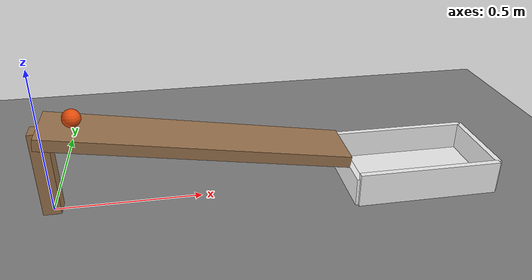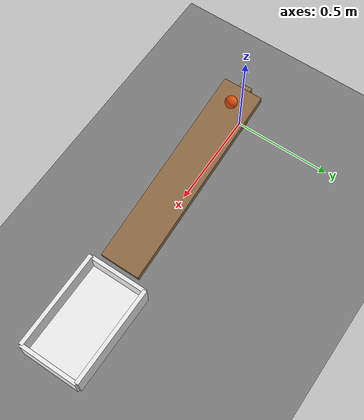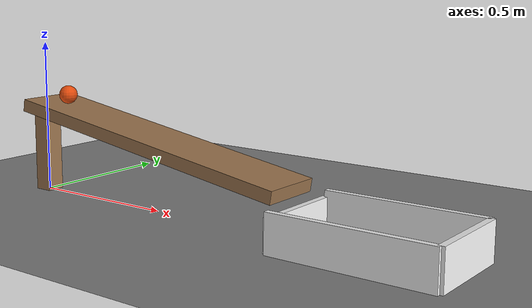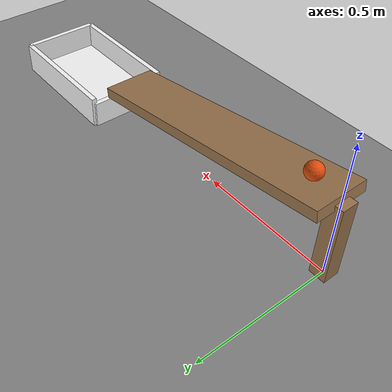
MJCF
<mujoco model="ball_rolls_down_a_ramp_into_a_cup">
  <compiler angle="radian"/>
  <option timestep="0.002"/>
  <worldbody>
    <geom name="floor" type="plane" size="8 8 0.1" friction="0.8 0.005 0.002"/>
    <body name="ramp">
      <geom name="ramp_deck" type="box" pos="0.5 0 0.22" size="0.50636 0.1 0.02" euler="0 0.158655 0" friction="0.8 0.005 0.002" rgba="0.6 0.45 0.3 1"/>
      <geom name="ramp_leg" type="box" pos="0 0 0.15" size="0.03 0.03 0.15" friction="0.8 0.005 0.002" rgba="0.6 0.45 0.3 1"/>
    </body>
    <body name="cup">
      <geom name="cup_base" type="box" pos="1.27 0 0.01" size="0.25 0.15 0.01" friction="0.8 0.005 0.003" solref="0.01 1" rgba="0.95 0.95 0.95 1"/>
      <geom name="cup_near_wall" type="box" pos="1.02 0 0.05" size="0.01 0.15 0.05" friction="0.8 0.005 0.003" solref="0.01 1" rgba="0.95 0.95 0.95 1"/>
      <geom name="cup_far_wall" type="box" pos="1.52 0 0.06" size="0.01 0.15 0.06" friction="0.8 0.005 0.003" solref="0.01 1" rgba="0.95 0.95 0.95 1"/>
      <geom name="cup_left_wall" type="box" pos="1.27 0.15 0.06" size="0.25 0.01 0.06" friction="0.8 0.005 0.003" solref="0.01 1" rgba="0.95 0.95 0.95 1"/>
      <geom name="cup_right_wall" type="box" pos="1.27 -0.15 0.06" size="0.25 0.01 0.06" friction="0.8 0.005 0.003" solref="0.01 1" rgba="0.95 0.95 0.95 1"/>
    </body>
    <body name="ball" pos="0.106644 0 0.333573">
      <freejoint/>
      <geom name="ball" type="sphere" pos="0 0 0" size="0.03" mass="0.05" condim="6" friction="0.8 0.005 0.002" solref="0.01 1" rgba="0.9 0.3 0.05 1"/>
    </body>
  </worldbody>
  <keyframe>
    <key name="start" qpos="0.106644 0 0.333573 1 0 0 0" qvel="0 0 0 0 0 0"/>
  </keyframe>
</mujoco>
